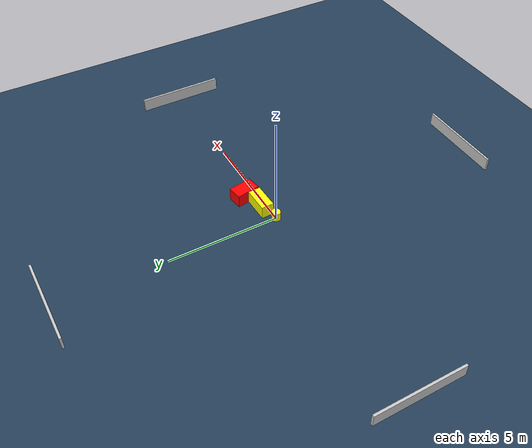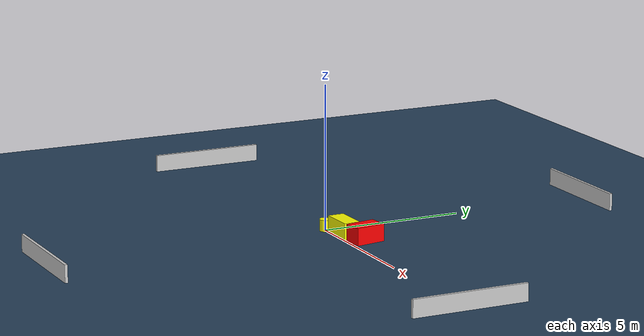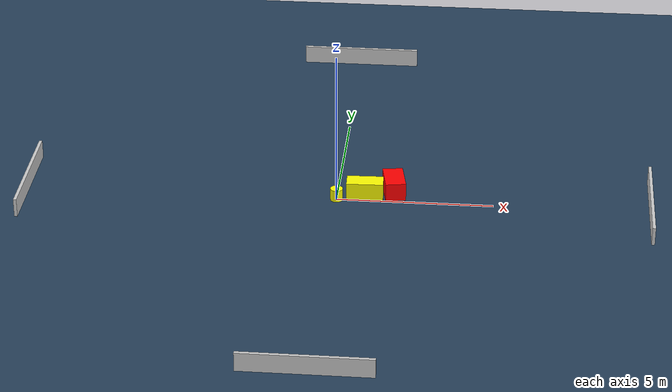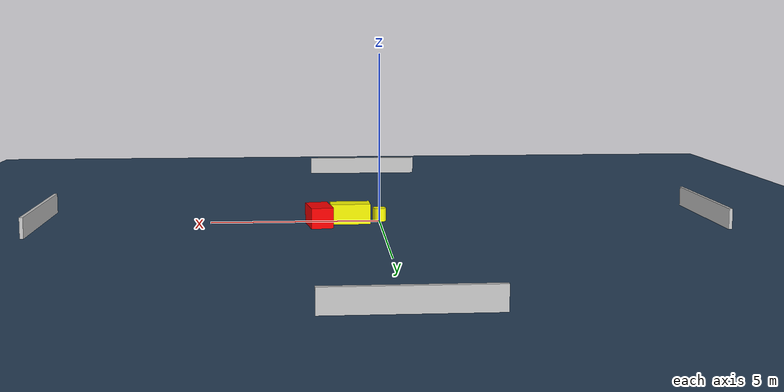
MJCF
<?xml version="1.0" ?>
<mujoco model="generated_environment">
  <option timestep="0.01" integrator="RK4" cone="elliptic"/>
  <default>
    <geom density="1"/>
  </default>
  <asset>
    <texture builtin="gradient" height="3072" name="skybox" rgb1="0.3 0.5 0.7" rgb2="0 0 0" type="skybox" width="512"/>
    <texture builtin="checker" height="300" name="groundplane" rgb1="0.2 0.3 0.4" rgb2="0.1 0.2 0.3" type="2d" width="300"/>
    <material name="groundplane" reflectance="0.2" texrepeat="5 5" texture="groundplane"/>
  </asset>
  <worldbody>
    <light dir="0 0 -1" directional="true" pos="0 0 1.5"/>
    <geom condim="3" friction="0.5 0.005 0.001" material="groundplane" name="floor" pos="0 0 0" size="0 0 0.05" type="plane"/>
    <body name="walls">
      <geom name="wall_1" condim="4" pos="-10.0 0.0 0.3" rgba="0.800000011920929 0.800000011920929 0.800000011920929 1.0" size="0.05 2.0 0.3" type="box"/>
      <geom name="wall_2" condim="4" pos="10.0 0.0 0.3" rgba="0.800000011920929 0.800000011920929 0.800000011920929 1.0" size="0.05 2.0 0.3" type="box"/>
      <geom name="wall_3" condim="4" pos="0.0 -10.0 0.3" rgba="0.800000011920929 0.800000011920929 0.800000011920929 1.0" size="2.0 0.05 0.3" type="box"/>
      <geom name="wall_4" condim="4" pos="0.0 10.0 0.3" rgba="0.800000011920929 0.800000011920929 0.800000011920929 1.0" size="2.0 0.05 0.3" type="box"/>
    </body>
    <body name="robot">
      <joint name="joint_x" type="slide" pos="0 0 0" axis="1 0 0"/>
      <joint name="joint_y" type="slide" pos="0 0 0" axis="0 1 0"/>
      <geom name="robot" type="cylinder" pos="0.0 0.0 0.2" size="0.2 0.2 0.0" mass="5.0" friction="1.0 0.005 0.0001" condim="4" rgba="1.0 1.0 0.0 1.0"/>
    </body>
    <body name="obstacle_1_movable">
      <geom name="obstacle_1_movable" condim="4" pos="0.8914885003901104 0.25363887463829743 0.3" euler="0 0 1.5476152860754322" friction="0.0 0.005 0.001" rgba="1.0 1.0 0.0 1.0" size="0.5878143597022271 0.2822763171041972 0.3" type="box" mass="0.1"/>
      <joint type="free"/>
    </body>
    <body name="obstacle_2_static">
      <geom name="obstacle_2_static" condim="4" pos="1.8036072931833984 0.5896206297030245 0.3" euler="0 0 279.6295106325723" friction="0.0 0.005 0.001" rgba="1.0 0.0 0.0 1.0" size="0.536085514871816 0.32590605526889294 0.3" type="box"/>
    </body>
  </worldbody>
  <actuator>
    <motor name="actuator_x" joint="joint_x" gear="1" ctrlrange="-1 1"/>
    <motor name="actuator_y" joint="joint_y" gear="1" ctrlrange="-1 1"/>
  </actuator>
</mujoco>
